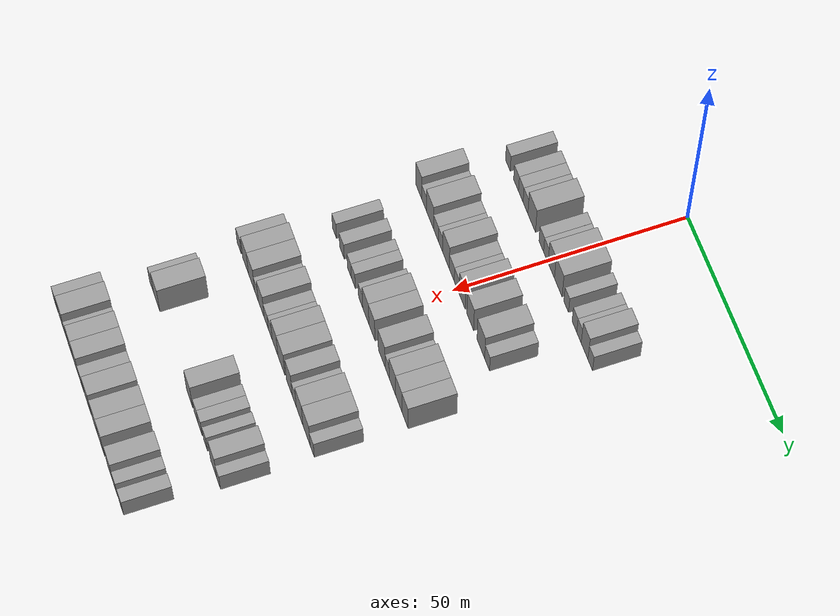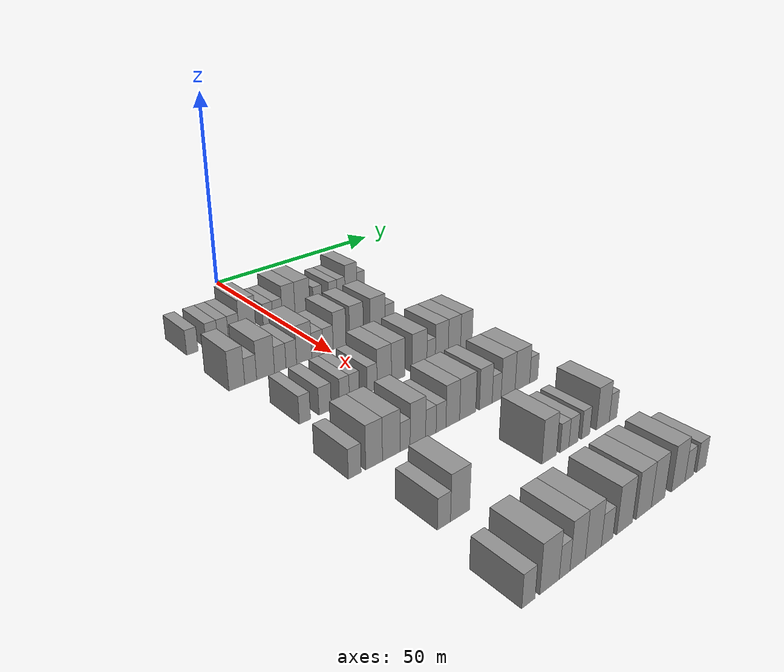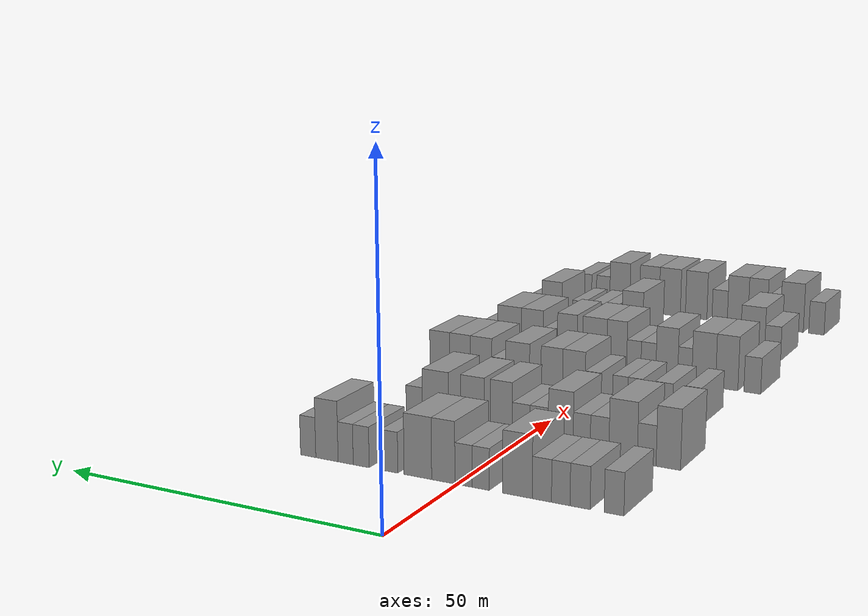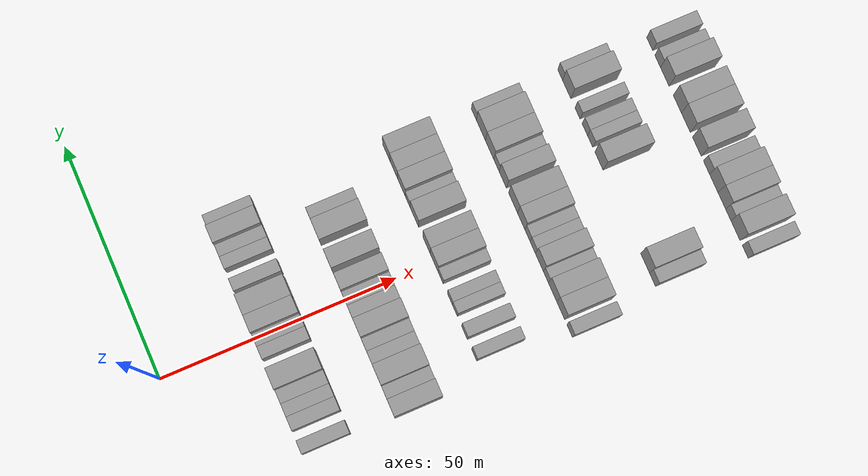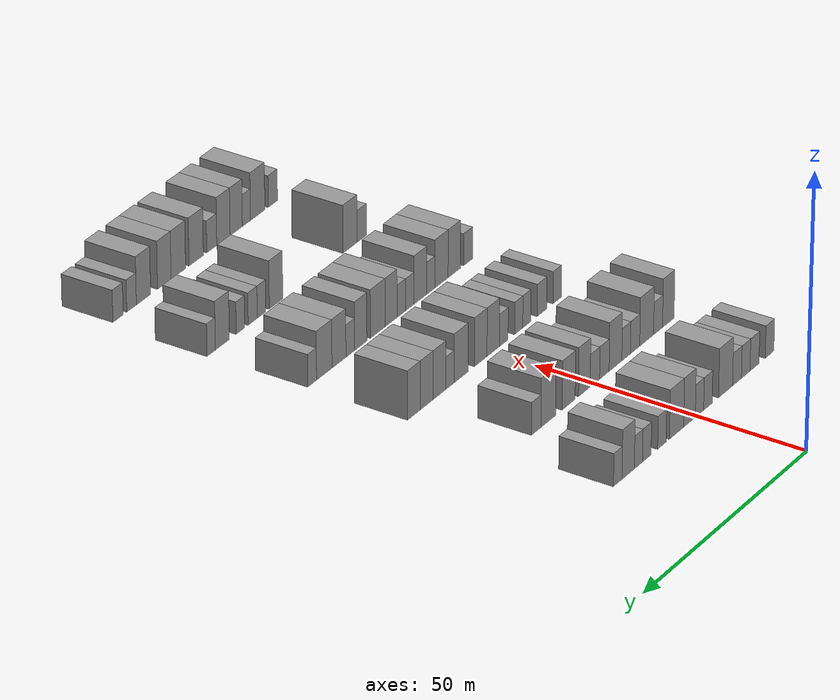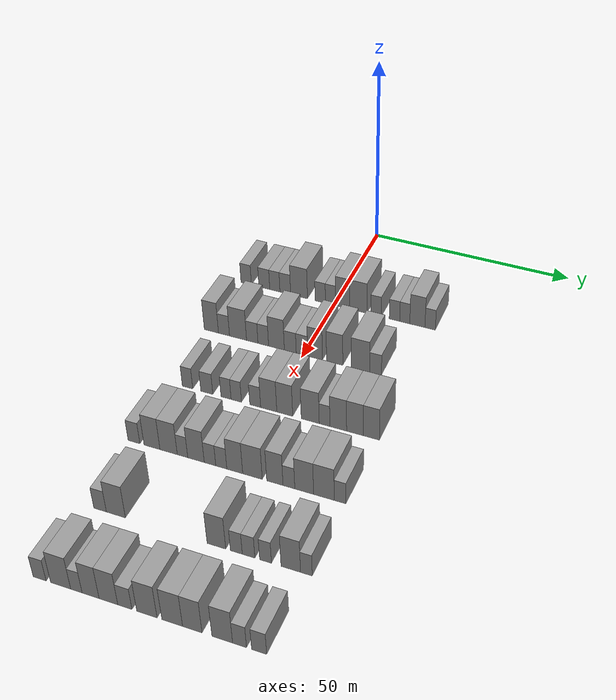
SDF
<sdf version="1.6">
 <world name="default">
  <model name="building_79">
   <static>1</static>
   <pose>25.0000 -23.0852 0 0.000000 0.000000 0.000000</pose>
   <link name="link">
    <pose>0 0 3.00 0 0 0</pose>
    <collision name="collision"><geometry><box><size>10.0000 2.7776 6.0000</size></box></geometry></collision>
    <visual name="visual">
     <cast_shadows>0</cast_shadows>
     <geometry><box><size>10.0000 2.7776 6.0000</size></box></geometry>
     <material>
      <script>
       <uri>model://grey_wall/materials/scripts</uri>
       <uri>model://grey_wall/materials/textures</uri>
       <name>vrc/grey_wall</name>
      </script>
     </material>
    </visual>
   </link>
  </model>
  <model name="building_80">
   <static>1</static>
   <pose>25.0000 -18.2527 0 0.000000 0.000000 0.000000</pose>
   <link name="link">
    <pose>0 0 3.00 0 0 0</pose>
    <collision name="collision"><geometry><box><size>10.0000 2.8874 6.0000</size></box></geometry></collision>
    <visual name="visual">
     <cast_shadows>0</cast_shadows>
     <geometry><box><size>10.0000 2.8874 6.0000</size></box></geometry>
     <material>
      <script>
       <uri>model://grey_wall/materials/scripts</uri>
       <uri>model://grey_wall/materials/textures</uri>
       <name>vrc/grey_wall</name>
      </script>
     </material>
    </visual>
   </link>
  </model>
  <model name="building_81">
   <static>1</static>
   <pose>25.0000 -15.4589 0 0.000000 0.000000 0.000000</pose>
   <link name="link">
    <pose>0 0 3.00 0 0 0</pose>
    <collision name="collision"><geometry><box><size>10.0000 2.7003 6.0000</size></box></geometry></collision>
    <visual name="visual">
     <cast_shadows>0</cast_shadows>
     <geometry><box><size>10.0000 2.7003 6.0000</size></box></geometry>
     <material>
      <script>
       <uri>model://grey_wall/materials/scripts</uri>
       <uri>model://grey_wall/materials/textures</uri>
       <name>vrc/grey_wall</name>
      </script>
     </material>
    </visual>
   </link>
  </model>
  <model name="building_82">
   <static>1</static>
   <pose>25.0000 -12.6991 0 0.000000 0.000000 0.000000</pose>
   <link name="link">
    <pose>0 0 3.00 0 0 0</pose>
    <collision name="collision"><geometry><box><size>10.0000 2.8193 6.0000</size></box></geometry></collision>
    <visual name="visual">
     <cast_shadows>0</cast_shadows>
     <geometry><box><size>10.0000 2.8193 6.0000</size></box></geometry>
     <material>
      <script>
       <uri>model://grey_wall/materials/scripts</uri>
       <uri>model://grey_wall/materials/textures</uri>
       <name>vrc/grey_wall</name>
      </script>
     </material>
    </visual>
   </link>
  </model>
  <model name="building_83">
   <static>1</static>
   <pose>25.0000 -9.0820 0 0.000000 0.000000 0.000000</pose>
   <link name="link">
    <pose>0 0 4.50 0 0 0</pose>
    <collision name="collision"><geometry><box><size>10.0000 4.4149 9.0000</size></box></geometry></collision>
    <visual name="visual">
     <cast_shadows>0</cast_shadows>
     <geometry><box><size>10.0000 4.4149 9.0000</size></box></geometry>
     <material>
      <script>
       <uri>model://grey_wall/materials/scripts</uri>
       <uri>model://grey_wall/materials/textures</uri>
       <name>vrc/grey_wall</name>
      </script>
     </material>
    </visual>
   </link>
  </model>
  <model name="building_84">
   <static>1</static>
   <pose>25.0000 -3.5385 0 0.000000 0.000000 0.000000</pose>
   <link name="link">
    <pose>0 0 3.00 0 0 0</pose>
    <collision name="collision"><geometry><box><size>10.0000 2.6722 6.0000</size></box></geometry></collision>
    <visual name="visual">
     <cast_shadows>0</cast_shadows>
     <geometry><box><size>10.0000 2.6722 6.0000</size></box></geometry>
     <material>
      <script>
       <uri>model://grey_wall/materials/scripts</uri>
       <uri>model://grey_wall/materials/textures</uri>
       <name>vrc/grey_wall</name>
      </script>
     </material>
    </visual>
   </link>
  </model>
  <model name="building_85">
   <static>1</static>
   <pose>25.0000 -0.8934 0 0.000000 0.000000 0.000000</pose>
   <link name="link">
    <pose>0 0 3.00 0 0 0</pose>
    <collision name="collision"><geometry><box><size>10.0000 2.6178 6.0000</size></box></geometry></collision>
    <visual name="visual">
     <cast_shadows>0</cast_shadows>
     <geometry><box><size>10.0000 2.6178 6.0000</size></box></geometry>
     <material>
      <script>
       <uri>model://grey_wall/materials/scripts</uri>
       <uri>model://grey_wall/materials/textures</uri>
       <name>vrc/grey_wall</name>
      </script>
     </material>
    </visual>
   </link>
  </model>
  <model name="building_86">
   <static>1</static>
   <pose>25.0000 2.2279 0 0.000000 0.000000 0.000000</pose>
   <link name="link">
    <pose>0 0 4.50 0 0 0</pose>
    <collision name="collision"><geometry><box><size>10.0000 3.6249 9.0000</size></box></geometry></collision>
    <visual name="visual">
     <cast_shadows>0</cast_shadows>
     <geometry><box><size>10.0000 3.6249 9.0000</size></box></geometry>
     <material>
      <script>
       <uri>model://grey_wall/materials/scripts</uri>
       <uri>model://grey_wall/materials/textures</uri>
       <name>vrc/grey_wall</name>
      </script>
     </material>
    </visual>
   </link>
  </model>
  <model name="building_87">
   <static>1</static>
   <pose>25.0000 6.2214 0 0.000000 0.000000 0.000000</pose>
   <link name="link">
    <pose>0 0 4.50 0 0 0</pose>
    <collision name="collision"><geometry><box><size>10.0000 4.3621 9.0000</size></box></geometry></collision>
    <visual name="visual">
     <cast_shadows>0</cast_shadows>
     <geometry><box><size>10.0000 4.3621 9.0000</size></box></geometry>
     <material>
      <script>
       <uri>model://grey_wall/materials/scripts</uri>
       <uri>model://grey_wall/materials/textures</uri>
       <name>vrc/grey_wall</name>
      </script>
     </material>
    </visual>
   </link>
  </model>
  <model name="building_88">
   <static>1</static>
   <pose>25.0000 10.7197 0 0.000000 0.000000 0.000000</pose>
   <link name="link">
    <pose>0 0 3.00 0 0 0</pose>
    <collision name="collision"><geometry><box><size>10.0000 2.6344 6.0000</size></box></geometry></collision>
    <visual name="visual">
     <cast_shadows>0</cast_shadows>
     <geometry><box><size>10.0000 2.6344 6.0000</size></box></geometry>
     <material>
      <script>
       <uri>model://grey_wall/materials/scripts</uri>
       <uri>model://grey_wall/materials/textures</uri>
       <name>vrc/grey_wall</name>
      </script>
     </material>
    </visual>
   </link>
  </model>
  <model name="building_89">
   <static>1</static>
   <pose>25.0000 15.3460 0 0.000000 0.000000 0.000000</pose>
   <link name="link">
    <pose>0 0 3.00 0 0 0</pose>
    <collision name="collision"><geometry><box><size>10.0000 2.6183 6.0000</size></box></geometry></collision>
    <visual name="visual">
     <cast_shadows>0</cast_shadows>
     <geometry><box><size>10.0000 2.6183 6.0000</size></box></geometry>
     <material>
      <script>
       <uri>model://grey_wall/materials/scripts</uri>
       <uri>model://grey_wall/materials/textures</uri>
       <name>vrc/grey_wall</name>
      </script>
     </material>
    </visual>
   </link>
  </model>
  <model name="building_90">
   <static>1</static>
   <pose>25.0000 17.9057 0 0.000000 0.000000 0.000000</pose>
   <link name="link">
    <pose>0 0 3.00 0 0 0</pose>
    <collision name="collision"><geometry><box><size>10.0000 2.5010 6.0000</size></box></geometry></collision>
    <visual name="visual">
     <cast_shadows>0</cast_shadows>
     <geometry><box><size>10.0000 2.5010 6.0000</size></box></geometry>
     <material>
      <script>
       <uri>model://grey_wall/materials/scripts</uri>
       <uri>model://grey_wall/materials/textures</uri>
       <name>vrc/grey_wall</name>
      </script>
     </material>
    </visual>
   </link>
  </model>
  <model name="building_91">
   <static>1</static>
   <pose>25.0000 21.0276 0 0.000000 0.000000 0.000000</pose>
   <link name="link">
    <pose>0 0 4.50 0 0 0</pose>
    <collision name="collision"><geometry><box><size>10.0000 3.7429 9.0000</size></box></geometry></collision>
    <visual name="visual">
     <cast_shadows>0</cast_shadows>
     <geometry><box><size>10.0000 3.7429 9.0000</size></box></geometry>
     <material>
      <script>
       <uri>model://grey_wall/materials/scripts</uri>
       <uri>model://grey_wall/materials/textures</uri>
       <name>vrc/grey_wall</name>
      </script>
     </material>
    </visual>
   </link>
  </model>
  <model name="building_92">
   <static>1</static>
   <pose>25.0000 24.1853 0 0.000000 0.000000 0.000000</pose>
   <link name="link">
    <pose>0 0 3.00 0 0 0</pose>
    <collision name="collision"><geometry><box><size>10.0000 2.5724 6.0000</size></box></geometry></collision>
    <visual name="visual">
     <cast_shadows>0</cast_shadows>
     <geometry><box><size>10.0000 2.5724 6.0000</size></box></geometry>
     <material>
      <script>
       <uri>model://grey_wall/materials/scripts</uri>
       <uri>model://grey_wall/materials/textures</uri>
       <name>vrc/grey_wall</name>
      </script>
     </material>
    </visual>
   </link>
  </model>
  <model name="building_261">
   <static>1</static>
   <pose>44.0000 -23.2607 0 0.000000 0.000000 0.000000</pose>
   <link name="link">
    <pose>0 0 4.50 0 0 0</pose>
    <collision name="collision"><geometry><box><size>10.0000 3.6522 9.0000</size></box></geometry></collision>
    <visual name="visual">
     <cast_shadows>0</cast_shadows>
     <geometry><box><size>10.0000 3.6522 9.0000</size></box></geometry>
     <material>
      <script>
       <uri>model://grey_wall/materials/scripts</uri>
       <uri>model://grey_wall/materials/textures</uri>
       <name>vrc/grey_wall</name>
      </script>
     </material>
    </visual>
   </link>
  </model>
  <model name="building_262">
   <static>1</static>
   <pose>44.0000 -20.0152 0 0.000000 0.000000 0.000000</pose>
   <link name="link">
    <pose>0 0 3.00 0 0 0</pose>
    <collision name="collision"><geometry><box><size>10.0000 2.8389 6.0000</size></box></geometry></collision>
    <visual name="visual">
     <cast_shadows>0</cast_shadows>
     <geometry><box><size>10.0000 2.8389 6.0000</size></box></geometry>
     <material>
      <script>
       <uri>model://grey_wall/materials/scripts</uri>
       <uri>model://grey_wall/materials/textures</uri>
       <name>vrc/grey_wall</name>
      </script>
     </material>
    </visual>
   </link>
  </model>
  <model name="building_263">
   <static>1</static>
   <pose>44.0000 -16.4196 0 0.000000 0.000000 0.000000</pose>
   <link name="link">
    <pose>0 0 4.50 0 0 0</pose>
    <collision name="collision"><geometry><box><size>10.0000 4.3523 9.0000</size></box></geometry></collision>
    <visual name="visual">
     <cast_shadows>0</cast_shadows>
     <geometry><box><size>10.0000 4.3523 9.0000</size></box></geometry>
     <material>
      <script>
       <uri>model://grey_wall/materials/scripts</uri>
       <uri>model://grey_wall/materials/textures</uri>
       <name>vrc/grey_wall</name>
      </script>
     </material>
    </visual>
   </link>
  </model>
  <model name="building_264">
   <static>1</static>
   <pose>44.0000 -12.7942 0 0.000000 0.000000 0.000000</pose>
   <link name="link">
    <pose>0 0 3.00 0 0 0</pose>
    <collision name="collision"><geometry><box><size>10.0000 2.8984 6.0000</size></box></geometry></collision>
    <visual name="visual">
     <cast_shadows>0</cast_shadows>
     <geometry><box><size>10.0000 2.8984 6.0000</size></box></geometry>
     <material>
      <script>
       <uri>model://grey_wall/materials/scripts</uri>
       <uri>model://grey_wall/materials/textures</uri>
       <name>vrc/grey_wall</name>
      </script>
     </material>
    </visual>
   </link>
  </model>
  <model name="building_265">
   <static>1</static>
   <pose>44.0000 -10.0050 0 0.000000 0.000000 0.000000</pose>
   <link name="link">
    <pose>0 0 3.00 0 0 0</pose>
    <collision name="collision"><geometry><box><size>10.0000 2.6799 6.0000</size></box></geometry></collision>
    <visual name="visual">
     <cast_shadows>0</cast_shadows>
     <geometry><box><size>10.0000 2.6799 6.0000</size></box></geometry>
     <material>
      <script>
       <uri>model://grey_wall/materials/scripts</uri>
       <uri>model://grey_wall/materials/textures</uri>
       <name>vrc/grey_wall</name>
      </script>
     </material>
    </visual>
   </link>
  </model>
  <model name="building_266">
   <static>1</static>
   <pose>44.0000 -6.6858 0 0.000000 0.000000 0.000000</pose>
   <link name="link">
    <pose>0 0 4.50 0 0 0</pose>
    <collision name="collision"><geometry><box><size>10.0000 3.9586 9.0000</size></box></geometry></collision>
    <visual name="visual">
     <cast_shadows>0</cast_shadows>
     <geometry><box><size>10.0000 3.9586 9.0000</size></box></geometry>
     <material>
      <script>
       <uri>model://grey_wall/materials/scripts</uri>
       <uri>model://grey_wall/materials/textures</uri>
       <name>vrc/grey_wall</name>
      </script>
     </material>
    </visual>
   </link>
  </model>
  <model name="building_267">
   <static>1</static>
   <pose>44.0000 -3.2329 0 0.000000 0.000000 0.000000</pose>
   <link name="link">
    <pose>0 0 3.00 0 0 0</pose>
    <collision name="collision"><geometry><box><size>10.0000 2.9471 6.0000</size></box></geometry></collision>
    <visual name="visual">
     <cast_shadows>0</cast_shadows>
     <geometry><box><size>10.0000 2.9471 6.0000</size></box></geometry>
     <material>
      <script>
       <uri>model://grey_wall/materials/scripts</uri>
       <uri>model://grey_wall/materials/textures</uri>
       <name>vrc/grey_wall</name>
      </script>
     </material>
    </visual>
   </link>
  </model>
  <model name="building_268">
   <static>1</static>
   <pose>44.0000 -0.3255 0 0.000000 0.000000 0.000000</pose>
   <link name="link">
    <pose>0 0 3.00 0 0 0</pose>
    <collision name="collision"><geometry><box><size>10.0000 2.8678 6.0000</size></box></geometry></collision>
    <visual name="visual">
     <cast_shadows>0</cast_shadows>
     <geometry><box><size>10.0000 2.8678 6.0000</size></box></geometry>
     <material>
      <script>
       <uri>model://grey_wall/materials/scripts</uri>
       <uri>model://grey_wall/materials/textures</uri>
       <name>vrc/grey_wall</name>
      </script>
     </material>
    </visual>
   </link>
  </model>
  <model name="building_269">
   <static>1</static>
   <pose>44.0000 2.9150 0 0.000000 0.000000 0.000000</pose>
   <link name="link">
    <pose>0 0 4.50 0 0 0</pose>
    <collision name="collision"><geometry><box><size>10.0000 3.6132 9.0000</size></box></geometry></collision>
    <visual name="visual">
     <cast_shadows>0</cast_shadows>
     <geometry><box><size>10.0000 3.6132 9.0000</size></box></geometry>
     <material>
      <script>
       <uri>model://grey_wall/materials/scripts</uri>
       <uri>model://grey_wall/materials/textures</uri>
       <name>vrc/grey_wall</name>
      </script>
     </material>
    </visual>
   </link>
  </model>
  <model name="building_270">
   <static>1</static>
   <pose>44.0000 7.7042 0 0.000000 0.000000 0.000000</pose>
   <link name="link">
    <pose>0 0 4.50 0 0 0</pose>
    <collision name="collision"><geometry><box><size>10.0000 3.9651 9.0000</size></box></geometry></collision>
    <visual name="visual">
     <cast_shadows>0</cast_shadows>
     <geometry><box><size>10.0000 3.9651 9.0000</size></box></geometry>
     <material>
      <script>
       <uri>model://grey_wall/materials/scripts</uri>
       <uri>model://grey_wall/materials/textures</uri>
       <name>vrc/grey_wall</name>
      </script>
     </material>
    </visual>
   </link>
  </model>
  <model name="building_271">
   <static>1</static>
   <pose>44.0000 13.9121 0 0.000000 0.000000 0.000000</pose>
   <link name="link">
    <pose>0 0 4.50 0 0 0</pose>
    <collision name="collision"><geometry><box><size>10.0000 4.4507 9.0000</size></box></geometry></collision>
    <visual name="visual">
     <cast_shadows>0</cast_shadows>
     <geometry><box><size>10.0000 4.4507 9.0000</size></box></geometry>
     <material>
      <script>
       <uri>model://grey_wall/materials/scripts</uri>
       <uri>model://grey_wall/materials/textures</uri>
       <name>vrc/grey_wall</name>
      </script>
     </material>
    </visual>
   </link>
  </model>
  <model name="building_272">
   <static>1</static>
   <pose>44.0000 17.5521 0 0.000000 0.000000 0.000000</pose>
   <link name="link">
    <pose>0 0 3.00 0 0 0</pose>
    <collision name="collision"><geometry><box><size>10.0000 2.8293 6.0000</size></box></geometry></collision>
    <visual name="visual">
     <cast_shadows>0</cast_shadows>
     <geometry><box><size>10.0000 2.8293 6.0000</size></box></geometry>
     <material>
      <script>
       <uri>model://grey_wall/materials/scripts</uri>
       <uri>model://grey_wall/materials/textures</uri>
       <name>vrc/grey_wall</name>
      </script>
     </material>
    </visual>
   </link>
  </model>
  <model name="building_441">
   <static>1</static>
   <pose>63.0000 -19.8646 0 0.000000 0.000000 0.000000</pose>
   <link name="link">
    <pose>0 0 3.00 0 0 0</pose>
    <collision name="collision"><geometry><box><size>10.0000 2.5623 6.0000</size></box></geometry></collision>
    <visual name="visual">
     <cast_shadows>0</cast_shadows>
     <geometry><box><size>10.0000 2.5623 6.0000</size></box></geometry>
     <material>
      <script>
       <uri>model://grey_wall/materials/scripts</uri>
       <uri>model://grey_wall/materials/textures</uri>
       <name>vrc/grey_wall</name>
      </script>
     </material>
    </visual>
   </link>
  </model>
  <model name="building_442">
   <static>1</static>
   <pose>63.0000 -15.1228 0 0.000000 0.000000 0.000000</pose>
   <link name="link">
    <pose>0 0 3.00 0 0 0</pose>
    <collision name="collision"><geometry><box><size>10.0000 2.9213 6.0000</size></box></geometry></collision>
    <visual name="visual">
     <cast_shadows>0</cast_shadows>
     <geometry><box><size>10.0000 2.9213 6.0000</size></box></geometry>
     <material>
      <script>
       <uri>model://grey_wall/materials/scripts</uri>
       <uri>model://grey_wall/materials/textures</uri>
       <name>vrc/grey_wall</name>
      </script>
     </material>
    </visual>
   </link>
  </model>
  <model name="building_443">
   <static>1</static>
   <pose>63.0000 -10.4390 0 0.000000 0.000000 0.000000</pose>
   <link name="link">
    <pose>0 0 3.00 0 0 0</pose>
    <collision name="collision"><geometry><box><size>10.0000 2.4463 6.0000</size></box></geometry></collision>
    <visual name="visual">
     <cast_shadows>0</cast_shadows>
     <geometry><box><size>10.0000 2.4463 6.0000</size></box></geometry>
     <material>
      <script>
       <uri>model://grey_wall/materials/scripts</uri>
       <uri>model://grey_wall/materials/textures</uri>
       <name>vrc/grey_wall</name>
      </script>
     </material>
    </visual>
   </link>
  </model>
  <model name="building_444">
   <static>1</static>
   <pose>63.0000 -7.9654 0 0.000000 0.000000 0.000000</pose>
   <link name="link">
    <pose>0 0 3.00 0 0 0</pose>
    <collision name="collision"><geometry><box><size>10.0000 2.5009 6.0000</size></box></geometry></collision>
    <visual name="visual">
     <cast_shadows>0</cast_shadows>
     <geometry><box><size>10.0000 2.5009 6.0000</size></box></geometry>
     <material>
      <script>
       <uri>model://grey_wall/materials/scripts</uri>
       <uri>model://grey_wall/materials/textures</uri>
       <name>vrc/grey_wall</name>
      </script>
     </material>
    </visual>
   </link>
  </model>
  <model name="building_445">
   <static>1</static>
   <pose>63.0000 -3.4153 0 0.000000 0.000000 0.000000</pose>
   <link name="link">
    <pose>0 0 3.00 0 0 0</pose>
    <collision name="collision"><geometry><box><size>10.0000 2.5994 6.0000</size></box></geometry></collision>
    <visual name="visual">
     <cast_shadows>0</cast_shadows>
     <geometry><box><size>10.0000 2.5994 6.0000</size></box></geometry>
     <material>
      <script>
       <uri>model://grey_wall/materials/scripts</uri>
       <uri>model://grey_wall/materials/textures</uri>
       <name>vrc/grey_wall</name>
      </script>
     </material>
    </visual>
   </link>
  </model>
  <model name="building_446">
   <static>1</static>
   <pose>63.0000 -0.1983 0 0.000000 0.000000 0.000000</pose>
   <link name="link">
    <pose>0 0 4.50 0 0 0</pose>
    <collision name="collision"><geometry><box><size>10.0000 3.8346 9.0000</size></box></geometry></collision>
    <visual name="visual">
     <cast_shadows>0</cast_shadows>
     <geometry><box><size>10.0000 3.8346 9.0000</size></box></geometry>
     <material>
      <script>
       <uri>model://grey_wall/materials/scripts</uri>
       <uri>model://grey_wall/materials/textures</uri>
       <name>vrc/grey_wall</name>
      </script>
     </material>
    </visual>
   </link>
  </model>
  <model name="building_447">
   <static>1</static>
   <pose>63.0000 3.5952 0 0.000000 0.000000 0.000000</pose>
   <link name="link">
    <pose>0 0 4.50 0 0 0</pose>
    <collision name="collision"><geometry><box><size>10.0000 3.7524 9.0000</size></box></geometry></collision>
    <visual name="visual">
     <cast_shadows>0</cast_shadows>
     <geometry><box><size>10.0000 3.7524 9.0000</size></box></geometry>
     <material>
      <script>
       <uri>model://grey_wall/materials/scripts</uri>
       <uri>model://grey_wall/materials/textures</uri>
       <name>vrc/grey_wall</name>
      </script>
     </material>
    </visual>
   </link>
  </model>
  <model name="building_448">
   <static>1</static>
   <pose>63.0000 9.5635 0 0.000000 0.000000 0.000000</pose>
   <link name="link">
    <pose>0 0 4.50 0 0 0</pose>
    <collision name="collision"><geometry><box><size>10.0000 4.1842 9.0000</size></box></geometry></collision>
    <visual name="visual">
     <cast_shadows>0</cast_shadows>
     <geometry><box><size>10.0000 4.1842 9.0000</size></box></geometry>
     <material>
      <script>
       <uri>model://grey_wall/materials/scripts</uri>
       <uri>model://grey_wall/materials/textures</uri>
       <name>vrc/grey_wall</name>
      </script>
     </material>
    </visual>
   </link>
  </model>
  <model name="building_449">
   <static>1</static>
   <pose>63.0000 12.8939 0 0.000000 0.000000 0.000000</pose>
   <link name="link">
    <pose>0 0 3.00 0 0 0</pose>
    <collision name="collision"><geometry><box><size>10.0000 2.4765 6.0000</size></box></geometry></collision>
    <visual name="visual">
     <cast_shadows>0</cast_shadows>
     <geometry><box><size>10.0000 2.4765 6.0000</size></box></geometry>
     <material>
      <script>
       <uri>model://grey_wall/materials/scripts</uri>
       <uri>model://grey_wall/materials/textures</uri>
       <name>vrc/grey_wall</name>
      </script>
     </material>
    </visual>
   </link>
  </model>
  <model name="building_450">
   <static>1</static>
   <pose>63.0000 16.0479 0 0.000000 0.000000 0.000000</pose>
   <link name="link">
    <pose>0 0 4.50 0 0 0</pose>
    <collision name="collision"><geometry><box><size>10.0000 3.8316 9.0000</size></box></geometry></collision>
    <visual name="visual">
     <cast_shadows>0</cast_shadows>
     <geometry><box><size>10.0000 3.8316 9.0000</size></box></geometry>
     <material>
      <script>
       <uri>model://grey_wall/materials/scripts</uri>
       <uri>model://grey_wall/materials/textures</uri>
       <name>vrc/grey_wall</name>
      </script>
     </material>
    </visual>
   </link>
  </model>
  <model name="building_451">
   <static>1</static>
   <pose>63.0000 19.8739 0 0.000000 0.000000 0.000000</pose>
   <link name="link">
    <pose>0 0 4.50 0 0 0</pose>
    <collision name="collision"><geometry><box><size>10.0000 3.8203 9.0000</size></box></geometry></collision>
    <visual name="visual">
     <cast_shadows>0</cast_shadows>
     <geometry><box><size>10.0000 3.8203 9.0000</size></box></geometry>
     <material>
      <script>
       <uri>model://grey_wall/materials/scripts</uri>
       <uri>model://grey_wall/materials/textures</uri>
       <name>vrc/grey_wall</name>
      </script>
     </material>
    </visual>
   </link>
  </model>
  <model name="building_452">
   <static>1</static>
   <pose>63.0000 23.6027 0 0.000000 0.000000 0.000000</pose>
   <link name="link">
    <pose>0 0 4.50 0 0 0</pose>
    <collision name="collision"><geometry><box><size>10.0000 3.6373 9.0000</size></box></geometry></collision>
    <visual name="visual">
     <cast_shadows>0</cast_shadows>
     <geometry><box><size>10.0000 3.6373 9.0000</size></box></geometry>
     <material>
      <script>
       <uri>model://grey_wall/materials/scripts</uri>
       <uri>model://grey_wall/materials/textures</uri>
       <name>vrc/grey_wall</name>
      </script>
     </material>
    </visual>
   </link>
  </model>
  <model name="building_627">
   <static>1</static>
   <pose>82.0000 -22.9002 0 0.000000 0.000000 0.000000</pose>
   <link name="link">
    <pose>0 0 3.00 0 0 0</pose>
    <collision name="collision"><geometry><box><size>10.0000 2.7990 6.0000</size></box></geometry></collision>
    <visual name="visual">
     <cast_shadows>0</cast_shadows>
     <geometry><box><size>10.0000 2.7990 6.0000</size></box></geometry>
     <material>
      <script>
       <uri>model://grey_wall/materials/scripts</uri>
       <uri>model://grey_wall/materials/textures</uri>
       <name>vrc/grey_wall</name>
      </script>
     </material>
    </visual>
   </link>
  </model>
  <model name="building_628">
   <static>1</static>
   <pose>82.0000 -18.6153 0 0.000000 0.000000 0.000000</pose>
   <link name="link">
    <pose>0 0 4.50 0 0 0</pose>
    <collision name="collision"><geometry><box><size>10.0000 3.7706 9.0000</size></box></geometry></collision>
    <visual name="visual">
     <cast_shadows>0</cast_shadows>
     <geometry><box><size>10.0000 3.7706 9.0000</size></box></geometry>
     <material>
      <script>
       <uri>model://grey_wall/materials/scripts</uri>
       <uri>model://grey_wall/materials/textures</uri>
       <name>vrc/grey_wall</name>
      </script>
     </material>
    </visual>
   </link>
  </model>
  <model name="building_629">
   <static>1</static>
   <pose>82.0000 -14.6957 0 0.000000 0.000000 0.000000</pose>
   <link name="link">
    <pose>0 0 4.50 0 0 0</pose>
    <collision name="collision"><geometry><box><size>10.0000 4.0687 9.0000</size></box></geometry></collision>
    <visual name="visual">
     <cast_shadows>0</cast_shadows>
     <geometry><box><size>10.0000 4.0687 9.0000</size></box></geometry>
     <material>
      <script>
       <uri>model://grey_wall/materials/scripts</uri>
       <uri>model://grey_wall/materials/textures</uri>
       <name>vrc/grey_wall</name>
      </script>
     </material>
    </visual>
   </link>
  </model>
  <model name="building_630">
   <static>1</static>
   <pose>82.0000 -11.4387 0 0.000000 0.000000 0.000000</pose>
   <link name="link">
    <pose>0 0 3.00 0 0 0</pose>
    <collision name="collision"><geometry><box><size>10.0000 2.4453 6.0000</size></box></geometry></collision>
    <visual name="visual">
     <cast_shadows>0</cast_shadows>
     <geometry><box><size>10.0000 2.4453 6.0000</size></box></geometry>
     <material>
      <script>
       <uri>model://grey_wall/materials/scripts</uri>
       <uri>model://grey_wall/materials/textures</uri>
       <name>vrc/grey_wall</name>
      </script>
     </material>
    </visual>
   </link>
  </model>
  <model name="building_631">
   <static>1</static>
   <pose>82.0000 -8.3066 0 0.000000 0.000000 0.000000</pose>
   <link name="link">
    <pose>0 0 4.50 0 0 0</pose>
    <collision name="collision"><geometry><box><size>10.0000 3.8190 9.0000</size></box></geometry></collision>
    <visual name="visual">
     <cast_shadows>0</cast_shadows>
     <geometry><box><size>10.0000 3.8190 9.0000</size></box></geometry>
     <material>
      <script>
       <uri>model://grey_wall/materials/scripts</uri>
       <uri>model://grey_wall/materials/textures</uri>
       <name>vrc/grey_wall</name>
      </script>
     </material>
    </visual>
   </link>
  </model>
  <model name="building_632">
   <static>1</static>
   <pose>82.0000 -5.0737 0 0.000000 0.000000 0.000000</pose>
   <link name="link">
    <pose>0 0 3.00 0 0 0</pose>
    <collision name="collision"><geometry><box><size>10.0000 2.6466 6.0000</size></box></geometry></collision>
    <visual name="visual">
     <cast_shadows>0</cast_shadows>
     <geometry><box><size>10.0000 2.6466 6.0000</size></box></geometry>
     <material>
      <script>
       <uri>model://grey_wall/materials/scripts</uri>
       <uri>model://grey_wall/materials/textures</uri>
       <name>vrc/grey_wall</name>
      </script>
     </material>
    </visual>
   </link>
  </model>
  <model name="building_633">
   <static>1</static>
   <pose>82.0000 -2.4838 0 0.000000 0.000000 0.000000</pose>
   <link name="link">
    <pose>0 0 3.00 0 0 0</pose>
    <collision name="collision"><geometry><box><size>10.0000 2.5332 6.0000</size></box></geometry></collision>
    <visual name="visual">
     <cast_shadows>0</cast_shadows>
     <geometry><box><size>10.0000 2.5332 6.0000</size></box></geometry>
     <material>
      <script>
       <uri>model://grey_wall/materials/scripts</uri>
       <uri>model://grey_wall/materials/textures</uri>
       <name>vrc/grey_wall</name>
      </script>
     </material>
    </visual>
   </link>
  </model>
  <model name="building_634">
   <static>1</static>
   <pose>82.0000 0.5848 0 0.000000 0.000000 0.000000</pose>
   <link name="link">
    <pose>0 0 4.50 0 0 0</pose>
    <collision name="collision"><geometry><box><size>10.0000 3.6040 9.0000</size></box></geometry></collision>
    <visual name="visual">
     <cast_shadows>0</cast_shadows>
     <geometry><box><size>10.0000 3.6040 9.0000</size></box></geometry>
     <material>
      <script>
       <uri>model://grey_wall/materials/scripts</uri>
       <uri>model://grey_wall/materials/textures</uri>
       <name>vrc/grey_wall</name>
      </script>
     </material>
    </visual>
   </link>
  </model>
  <model name="building_635">
   <static>1</static>
   <pose>82.0000 4.5910 0 0.000000 0.000000 0.000000</pose>
   <link name="link">
    <pose>0 0 4.50 0 0 0</pose>
    <collision name="collision"><geometry><box><size>10.0000 4.4083 9.0000</size></box></geometry></collision>
    <visual name="visual">
     <cast_shadows>0</cast_shadows>
     <geometry><box><size>10.0000 4.4083 9.0000</size></box></geometry>
     <material>
      <script>
       <uri>model://grey_wall/materials/scripts</uri>
       <uri>model://grey_wall/materials/textures</uri>
       <name>vrc/grey_wall</name>
      </script>
     </material>
    </visual>
   </link>
  </model>
  <model name="building_636">
   <static>1</static>
   <pose>82.0000 9.6081 0 0.000000 0.000000 0.000000</pose>
   <link name="link">
    <pose>0 0 4.50 0 0 0</pose>
    <collision name="collision"><geometry><box><size>10.0000 3.6258 9.0000</size></box></geometry></collision>
    <visual name="visual">
     <cast_shadows>0</cast_shadows>
     <geometry><box><size>10.0000 3.6258 9.0000</size></box></geometry>
     <material>
      <script>
       <uri>model://grey_wall/materials/scripts</uri>
       <uri>model://grey_wall/materials/textures</uri>
       <name>vrc/grey_wall</name>
      </script>
     </material>
    </visual>
   </link>
  </model>
  <model name="building_637">
   <static>1</static>
   <pose>82.0000 12.7259 0 0.000000 0.000000 0.000000</pose>
   <link name="link">
    <pose>0 0 3.00 0 0 0</pose>
    <collision name="collision"><geometry><box><size>10.0000 2.6097 6.0000</size></box></geometry></collision>
    <visual name="visual">
     <cast_shadows>0</cast_shadows>
     <geometry><box><size>10.0000 2.6097 6.0000</size></box></geometry>
     <material>
      <script>
       <uri>model://grey_wall/materials/scripts</uri>
       <uri>model://grey_wall/materials/textures</uri>
       <name>vrc/grey_wall</name>
      </script>
     </material>
    </visual>
   </link>
  </model>
  <model name="building_638">
   <static>1</static>
   <pose>82.0000 16.1019 0 0.000000 0.000000 0.000000</pose>
   <link name="link">
    <pose>0 0 4.50 0 0 0</pose>
    <collision name="collision"><geometry><box><size>10.0000 4.1423 9.0000</size></box></geometry></collision>
    <visual name="visual">
     <cast_shadows>0</cast_shadows>
     <geometry><box><size>10.0000 4.1423 9.0000</size></box></geometry>
     <material>
      <script>
       <uri>model://grey_wall/materials/scripts</uri>
       <uri>model://grey_wall/materials/textures</uri>
       <name>vrc/grey_wall</name>
      </script>
     </material>
    </visual>
   </link>
  </model>
  <model name="building_639">
   <static>1</static>
   <pose>82.0000 20.4220 0 0.000000 0.000000 0.000000</pose>
   <link name="link">
    <pose>0 0 4.50 0 0 0</pose>
    <collision name="collision"><geometry><box><size>10.0000 4.4980 9.0000</size></box></geometry></collision>
    <visual name="visual">
     <cast_shadows>0</cast_shadows>
     <geometry><box><size>10.0000 4.4980 9.0000</size></box></geometry>
     <material>
      <script>
       <uri>model://grey_wall/materials/scripts</uri>
       <uri>model://grey_wall/materials/textures</uri>
       <name>vrc/grey_wall</name>
      </script>
     </material>
    </visual>
   </link>
  </model>
  <model name="building_640">
   <static>1</static>
   <pose>82.0000 23.9381 0 0.000000 0.000000 0.000000</pose>
   <link name="link">
    <pose>0 0 3.00 0 0 0</pose>
    <collision name="collision"><geometry><box><size>10.0000 2.5341 6.0000</size></box></geometry></collision>
    <visual name="visual">
     <cast_shadows>0</cast_shadows>
     <geometry><box><size>10.0000 2.5341 6.0000</size></box></geometry>
     <material>
      <script>
       <uri>model://grey_wall/materials/scripts</uri>
       <uri>model://grey_wall/materials/textures</uri>
       <name>vrc/grey_wall</name>
      </script>
     </material>
    </visual>
   </link>
  </model>
  <model name="building_811">
   <static>1</static>
   <pose>101.0000 -20.1653 0 0.000000 0.000000 0.000000</pose>
   <link name="link">
    <pose>0 0 3.00 0 0 0</pose>
    <collision name="collision"><geometry><box><size>10.0000 2.8592 6.0000</size></box></geometry></collision>
    <visual name="visual">
     <cast_shadows>0</cast_shadows>
     <geometry><box><size>10.0000 2.8592 6.0000</size></box></geometry>
     <material>
      <script>
       <uri>model://grey_wall/materials/scripts</uri>
       <uri>model://grey_wall/materials/textures</uri>
       <name>vrc/grey_wall</name>
      </script>
     </material>
    </visual>
   </link>
  </model>
  <model name="building_812">
   <static>1</static>
   <pose>101.0000 -16.5824 0 0.000000 0.000000 0.000000</pose>
   <link name="link">
    <pose>0 0 4.50 0 0 0</pose>
    <collision name="collision"><geometry><box><size>10.0000 4.3066 9.0000</size></box></geometry></collision>
    <visual name="visual">
     <cast_shadows>0</cast_shadows>
     <geometry><box><size>10.0000 4.3066 9.0000</size></box></geometry>
     <material>
      <script>
       <uri>model://grey_wall/materials/scripts</uri>
       <uri>model://grey_wall/materials/textures</uri>
       <name>vrc/grey_wall</name>
      </script>
     </material>
    </visual>
   </link>
  </model>
  <model name="building_813">
   <static>1</static>
   <pose>101.0000 5.5743 0 0.000000 0.000000 0.000000</pose>
   <link name="link">
    <pose>0 0 4.50 0 0 0</pose>
    <collision name="collision"><geometry><box><size>10.0000 4.0023 9.0000</size></box></geometry></collision>
    <visual name="visual">
     <cast_shadows>0</cast_shadows>
     <geometry><box><size>10.0000 4.0023 9.0000</size></box></geometry>
     <material>
      <script>
       <uri>model://grey_wall/materials/scripts</uri>
       <uri>model://grey_wall/materials/textures</uri>
       <name>vrc/grey_wall</name>
      </script>
     </material>
    </visual>
   </link>
  </model>
  <model name="building_814">
   <static>1</static>
   <pose>101.0000 9.8368 0 0.000000 0.000000 0.000000</pose>
   <link name="link">
    <pose>0 0 3.00 0 0 0</pose>
    <collision name="collision"><geometry><box><size>10.0000 2.5226 6.0000</size></box></geometry></collision>
    <visual name="visual">
     <cast_shadows>0</cast_shadows>
     <geometry><box><size>10.0000 2.5226 6.0000</size></box></geometry>
     <material>
      <script>
       <uri>model://grey_wall/materials/scripts</uri>
       <uri>model://grey_wall/materials/textures</uri>
       <name>vrc/grey_wall</name>
      </script>
     </material>
    </visual>
   </link>
  </model>
  <model name="building_815">
   <static>1</static>
   <pose>101.0000 12.4356 0 0.000000 0.000000 0.000000</pose>
   <link name="link">
    <pose>0 0 3.00 0 0 0</pose>
    <collision name="collision"><geometry><box><size>10.0000 2.6750 6.0000</size></box></geometry></collision>
    <visual name="visual">
     <cast_shadows>0</cast_shadows>
     <geometry><box><size>10.0000 2.6750 6.0000</size></box></geometry>
     <material>
      <script>
       <uri>model://grey_wall/materials/scripts</uri>
       <uri>model://grey_wall/materials/textures</uri>
       <name>vrc/grey_wall</name>
      </script>
     </material>
    </visual>
   </link>
  </model>
  <model name="building_816">
   <static>1</static>
   <pose>101.0000 16.0113 0 0.000000 0.000000 0.000000</pose>
   <link name="link">
    <pose>0 0 3.00 0 0 0</pose>
    <collision name="collision"><geometry><box><size>10.0000 2.4763 6.0000</size></box></geometry></collision>
    <visual name="visual">
     <cast_shadows>0</cast_shadows>
     <geometry><box><size>10.0000 2.4763 6.0000</size></box></geometry>
     <material>
      <script>
       <uri>model://grey_wall/materials/scripts</uri>
       <uri>model://grey_wall/materials/textures</uri>
       <name>vrc/grey_wall</name>
      </script>
     </material>
    </visual>
   </link>
  </model>
  <model name="building_817">
   <static>1</static>
   <pose>101.0000 21.2736 0 0.000000 0.000000 0.000000</pose>
   <link name="link">
    <pose>0 0 4.50 0 0 0</pose>
    <collision name="collision"><geometry><box><size>10.0000 4.0484 9.0000</size></box></geometry></collision>
    <visual name="visual">
     <cast_shadows>0</cast_shadows>
     <geometry><box><size>10.0000 4.0484 9.0000</size></box></geometry>
     <material>
      <script>
       <uri>model://grey_wall/materials/scripts</uri>
       <uri>model://grey_wall/materials/textures</uri>
       <name>vrc/grey_wall</name>
      </script>
     </material>
    </visual>
   </link>
  </model>
  <model name="building_818">
   <static>1</static>
   <pose>101.0000 24.5033 0 0.000000 0.000000 0.000000</pose>
   <link name="link">
    <pose>0 0 3.00 0 0 0</pose>
    <collision name="collision"><geometry><box><size>10.0000 2.4109 6.0000</size></box></geometry></collision>
    <visual name="visual">
     <cast_shadows>0</cast_shadows>
     <geometry><box><size>10.0000 2.4109 6.0000</size></box></geometry>
     <material>
      <script>
       <uri>model://grey_wall/materials/scripts</uri>
       <uri>model://grey_wall/materials/textures</uri>
       <name>vrc/grey_wall</name>
      </script>
     </material>
    </visual>
   </link>
  </model>
  <model name="building_973">
   <static>1</static>
   <pose>120.0000 -22.2985 0 0.000000 0.000000 0.000000</pose>
   <link name="link">
    <pose>0 0 3.00 0 0 0</pose>
    <collision name="collision"><geometry><box><size>10.0000 2.8247 6.0000</size></box></geometry></collision>
    <visual name="visual">
     <cast_shadows>0</cast_shadows>
     <geometry><box><size>10.0000 2.8247 6.0000</size></box></geometry>
     <material>
      <script>
       <uri>model://grey_wall/materials/scripts</uri>
       <uri>model://grey_wall/materials/textures</uri>
       <name>vrc/grey_wall</name>
      </script>
     </material>
    </visual>
   </link>
  </model>
  <model name="building_974">
   <static>1</static>
   <pose>120.0000 -17.7213 0 0.000000 0.000000 0.000000</pose>
   <link name="link">
    <pose>0 0 4.50 0 0 0</pose>
    <collision name="collision"><geometry><box><size>10.0000 4.3298 9.0000</size></box></geometry></collision>
    <visual name="visual">
     <cast_shadows>0</cast_shadows>
     <geometry><box><size>10.0000 4.3298 9.0000</size></box></geometry>
     <material>
      <script>
       <uri>model://grey_wall/materials/scripts</uri>
       <uri>model://grey_wall/materials/textures</uri>
       <name>vrc/grey_wall</name>
      </script>
     </material>
    </visual>
   </link>
  </model>
  <model name="building_975">
   <static>1</static>
   <pose>120.0000 -14.3290 0 0.000000 0.000000 0.000000</pose>
   <link name="link">
    <pose>0 0 3.00 0 0 0</pose>
    <collision name="collision"><geometry><box><size>10.0000 2.4548 6.0000</size></box></geometry></collision>
    <visual name="visual">
     <cast_shadows>0</cast_shadows>
     <geometry><box><size>10.0000 2.4548 6.0000</size></box></geometry>
     <material>
      <script>
       <uri>model://grey_wall/materials/scripts</uri>
       <uri>model://grey_wall/materials/textures</uri>
       <name>vrc/grey_wall</name>
      </script>
     </material>
    </visual>
   </link>
  </model>
  <model name="building_976">
   <static>1</static>
   <pose>120.0000 -11.2874 0 0.000000 0.000000 0.000000</pose>
   <link name="link">
    <pose>0 0 4.50 0 0 0</pose>
    <collision name="collision"><geometry><box><size>10.0000 3.6283 9.0000</size></box></geometry></collision>
    <visual name="visual">
     <cast_shadows>0</cast_shadows>
     <geometry><box><size>10.0000 3.6283 9.0000</size></box></geometry>
     <material>
      <script>
       <uri>model://grey_wall/materials/scripts</uri>
       <uri>model://grey_wall/materials/textures</uri>
       <name>vrc/grey_wall</name>
      </script>
     </material>
    </visual>
   </link>
  </model>
  <model name="building_977">
   <static>1</static>
   <pose>120.0000 -7.4917 0 0.000000 0.000000 0.000000</pose>
   <link name="link">
    <pose>0 0 4.50 0 0 0</pose>
    <collision name="collision"><geometry><box><size>10.0000 3.9632 9.0000</size></box></geometry></collision>
    <visual name="visual">
     <cast_shadows>0</cast_shadows>
     <geometry><box><size>10.0000 3.9632 9.0000</size></box></geometry>
     <material>
      <script>
       <uri>model://grey_wall/materials/scripts</uri>
       <uri>model://grey_wall/materials/textures</uri>
       <name>vrc/grey_wall</name>
      </script>
     </material>
    </visual>
   </link>
  </model>
  <model name="building_978">
   <static>1</static>
   <pose>120.0000 -4.0285 0 0.000000 0.000000 0.000000</pose>
   <link name="link">
    <pose>0 0 3.00 0 0 0</pose>
    <collision name="collision"><geometry><box><size>10.0000 2.9633 6.0000</size></box></geometry></collision>
    <visual name="visual">
     <cast_shadows>0</cast_shadows>
     <geometry><box><size>10.0000 2.9633 6.0000</size></box></geometry>
     <material>
      <script>
       <uri>model://grey_wall/materials/scripts</uri>
       <uri>model://grey_wall/materials/textures</uri>
       <name>vrc/grey_wall</name>
      </script>
     </material>
    </visual>
   </link>
  </model>
  <model name="building_979">
   <static>1</static>
   <pose>120.0000 0.5634 0 0.000000 0.000000 0.000000</pose>
   <link name="link">
    <pose>0 0 4.50 0 0 0</pose>
    <collision name="collision"><geometry><box><size>10.0000 4.2205 9.0000</size></box></geometry></collision>
    <visual name="visual">
     <cast_shadows>0</cast_shadows>
     <geometry><box><size>10.0000 4.2205 9.0000</size></box></geometry>
     <material>
      <script>
       <uri>model://grey_wall/materials/scripts</uri>
       <uri>model://grey_wall/materials/textures</uri>
       <name>vrc/grey_wall</name>
      </script>
     </material>
    </visual>
   </link>
  </model>
  <model name="building_980">
   <static>1</static>
   <pose>120.0000 5.7918 0 0.000000 0.000000 0.000000</pose>
   <link name="link">
    <pose>0 0 4.50 0 0 0</pose>
    <collision name="collision"><geometry><box><size>10.0000 4.2363 9.0000</size></box></geometry></collision>
    <visual name="visual">
     <cast_shadows>0</cast_shadows>
     <geometry><box><size>10.0000 4.2363 9.0000</size></box></geometry>
     <material>
      <script>
       <uri>model://grey_wall/materials/scripts</uri>
       <uri>model://grey_wall/materials/textures</uri>
       <name>vrc/grey_wall</name>
      </script>
     </material>
    </visual>
   </link>
  </model>
  <model name="building_981">
   <static>1</static>
   <pose>120.0000 9.8851 0 0.000000 0.000000 0.000000</pose>
   <link name="link">
    <pose>0 0 4.50 0 0 0</pose>
    <collision name="collision"><geometry><box><size>10.0000 3.9503 9.0000</size></box></geometry></collision>
    <visual name="visual">
     <cast_shadows>0</cast_shadows>
     <geometry><box><size>10.0000 3.9503 9.0000</size></box></geometry>
     <material>
      <script>
       <uri>model://grey_wall/materials/scripts</uri>
       <uri>model://grey_wall/materials/textures</uri>
       <name>vrc/grey_wall</name>
      </script>
     </material>
    </visual>
   </link>
  </model>
  <model name="building_982">
   <static>1</static>
   <pose>120.0000 15.9230 0 0.000000 0.000000 0.000000</pose>
   <link name="link">
    <pose>0 0 4.50 0 0 0</pose>
    <collision name="collision"><geometry><box><size>10.0000 4.1255 9.0000</size></box></geometry></collision>
    <visual name="visual">
     <cast_shadows>0</cast_shadows>
     <geometry><box><size>10.0000 4.1255 9.0000</size></box></geometry>
     <material>
      <script>
       <uri>model://grey_wall/materials/scripts</uri>
       <uri>model://grey_wall/materials/textures</uri>
       <name>vrc/grey_wall</name>
      </script>
     </material>
    </visual>
   </link>
  </model>
  <model name="building_983">
   <static>1</static>
   <pose>120.0000 19.3677 0 0.000000 0.000000 0.000000</pose>
   <link name="link">
    <pose>0 0 3.00 0 0 0</pose>
    <collision name="collision"><geometry><box><size>10.0000 2.7640 6.0000</size></box></geometry></collision>
    <visual name="visual">
     <cast_shadows>0</cast_shadows>
     <geometry><box><size>10.0000 2.7640 6.0000</size></box></geometry>
     <material>
      <script>
       <uri>model://grey_wall/materials/scripts</uri>
       <uri>model://grey_wall/materials/textures</uri>
       <name>vrc/grey_wall</name>
      </script>
     </material>
    </visual>
   </link>
  </model>
  <model name="building_984">
   <static>1</static>
   <pose>120.0000 23.2313 0 0.000000 0.000000 0.000000</pose>
   <link name="link">
    <pose>0 0 3.00 0 0 0</pose>
    <collision name="collision"><geometry><box><size>10.0000 2.9631 6.0000</size></box></geometry></collision>
    <visual name="visual">
     <cast_shadows>0</cast_shadows>
     <geometry><box><size>10.0000 2.9631 6.0000</size></box></geometry>
     <material>
      <script>
       <uri>model://grey_wall/materials/scripts</uri>
       <uri>model://grey_wall/materials/textures</uri>
       <name>vrc/grey_wall</name>
      </script>
     </material>
    </visual>
   </link>
  </model>
 </world>
</sdf>
